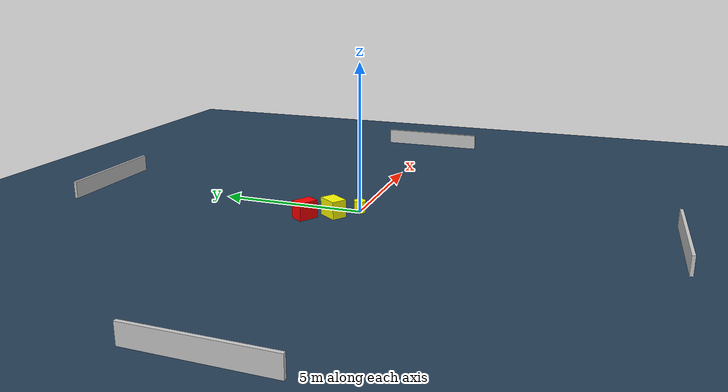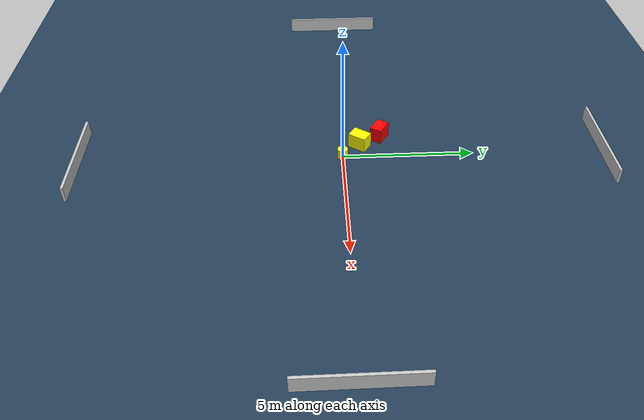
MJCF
<?xml version="1.0" ?>
<mujoco model="generated_environment">
  <option timestep="0.01" integrator="RK4" cone="elliptic"/>
  <default>
    <geom density="1"/>
  </default>
  <asset>
    <texture builtin="gradient" height="3072" name="skybox" rgb1="0.3 0.5 0.7" rgb2="0 0 0" type="skybox" width="512"/>
    <texture builtin="checker" height="300" name="groundplane" rgb1="0.2 0.3 0.4" rgb2="0.1 0.2 0.3" type="2d" width="300"/>
    <material name="groundplane" reflectance="0.2" texrepeat="5 5" texture="groundplane"/>
  </asset>
  <worldbody>
    <light dir="0 0 -1" directional="true" pos="0 0 1.5"/>
    <geom condim="3" friction="0.5 0.005 0.001" material="groundplane" name="floor" pos="0 0 0" size="0 0 0.05" type="plane"/>
    <body name="walls">
      <geom name="wall_1" condim="4" pos="-10.0 0.0 0.3" rgba="0.800000011920929 0.800000011920929 0.800000011920929 1.0" size="0.05 2.0 0.3" type="box"/>
      <geom name="wall_2" condim="4" pos="10.0 0.0 0.3" rgba="0.800000011920929 0.800000011920929 0.800000011920929 1.0" size="0.05 2.0 0.3" type="box"/>
      <geom name="wall_3" condim="4" pos="0.0 -10.0 0.3" rgba="0.800000011920929 0.800000011920929 0.800000011920929 1.0" size="2.0 0.05 0.3" type="box"/>
      <geom name="wall_4" condim="4" pos="0.0 10.0 0.3" rgba="0.800000011920929 0.800000011920929 0.800000011920929 1.0" size="2.0 0.05 0.3" type="box"/>
    </body>
    <body name="robot">
      <joint name="joint_x" type="slide" pos="0 0 0" axis="1 0 0"/>
      <joint name="joint_y" type="slide" pos="0 0 0" axis="0 1 0"/>
      <geom name="robot" type="cylinder" pos="0.0 0.0 0.2" size="0.2 0.2 0.0" mass="5.0" friction="1.0 0.005 0.0001" condim="4" rgba="1.0 1.0 0.0 1.0"/>
    </body>
    <body name="obstacle_1_movable">
      <geom name="obstacle_1_movable" condim="4" pos="-0.6646305994225888 0.6882988417319577 0.3" euler="0 0 55.154979409736804" friction="0.0 0.005 0.001" rgba="1.0 1.0 0.0 1.0" size="0.3578791022180683 0.258778562406873 0.3" type="box" mass="0.1"/>
      <joint type="free"/>
    </body>
    <body name="obstacle_2_static">
      <geom name="obstacle_2_static" condim="4" pos="-1.1617253400875167 1.494738409587757 0.3" euler="0 0 237.49662222259525" friction="0.0 0.005 0.001" rgba="1.0 0.0 0.0 1.0" size="0.23461381151787847 0.33842384657928615 0.3" type="box"/>
    </body>
  </worldbody>
  <actuator>
    <motor name="actuator_x" joint="joint_x" gear="1" ctrlrange="-1 1"/>
    <motor name="actuator_y" joint="joint_y" gear="1" ctrlrange="-1 1"/>
  </actuator>
</mujoco>
